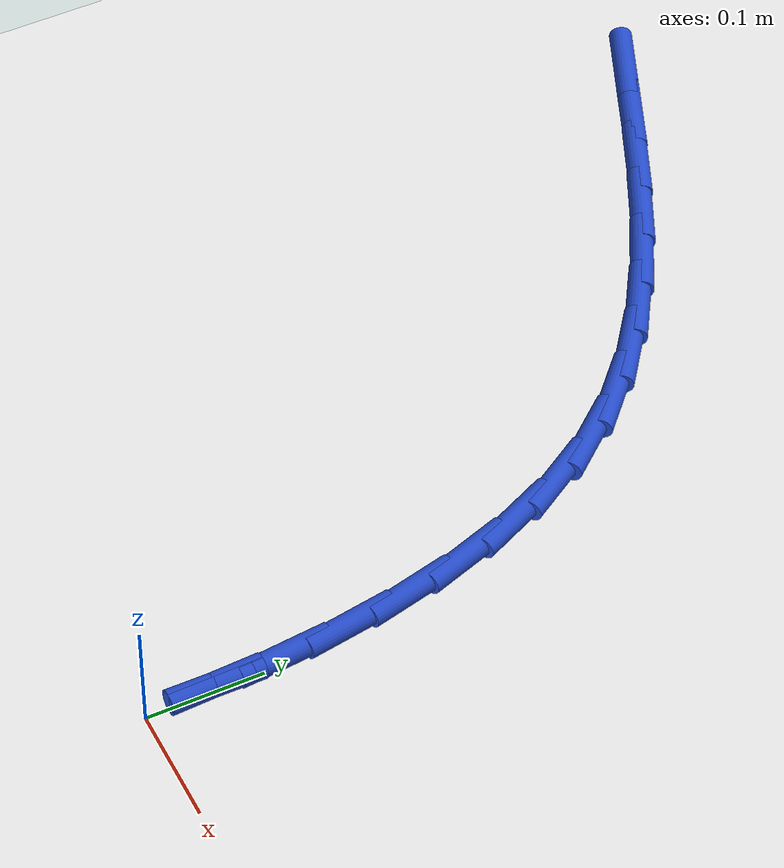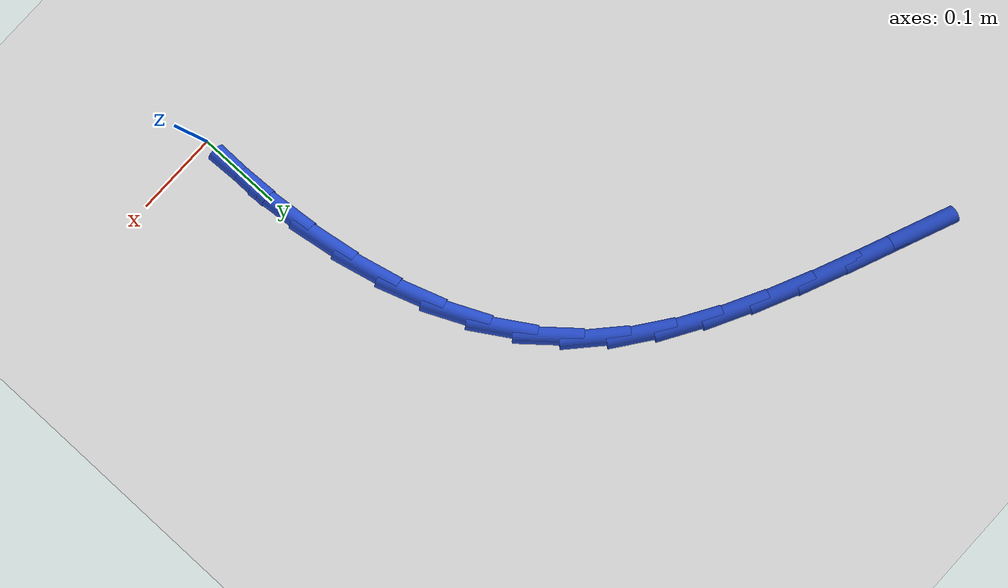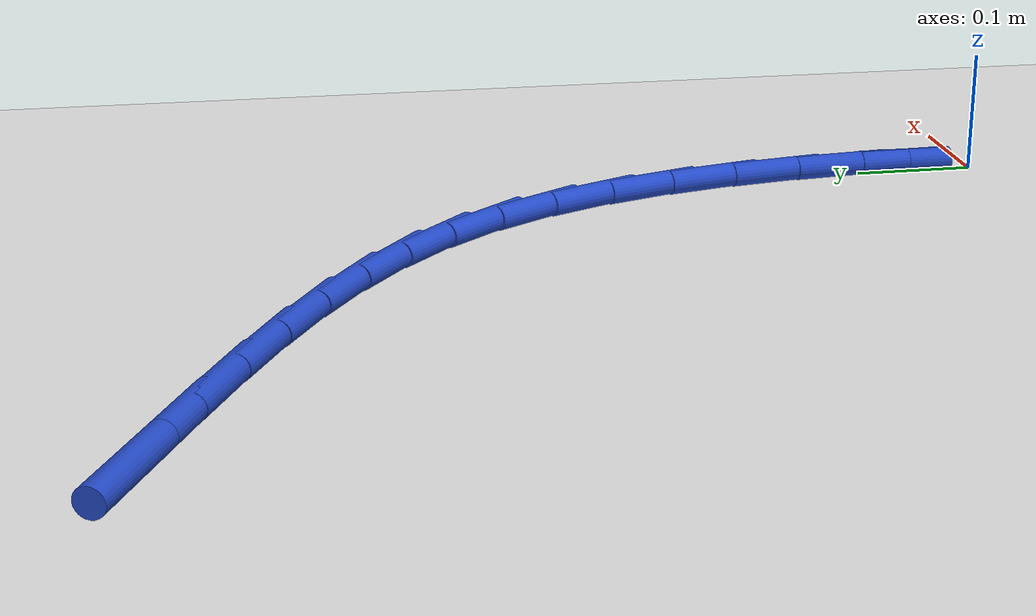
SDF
<sdf version="1.6">
 <world name="default">
  <model name="ground_plane">
   <static>1</static>
   <link name="link">
    <collision name="collision">
     <geometry><plane><normal>0 0 1</normal><size>100 100</size></plane></geometry>
     <surface><friction><ode><mu>100</mu><mu2>50</mu2></ode></friction></surface>
    </collision>
    <visual name="visual">
     <cast_shadows>0</cast_shadows>
     <geometry><plane><normal>0 0 1</normal><size>100 100</size></plane></geometry>
     <material>
      <script><uri>file://media/materials/scripts/gazebo.material</uri><name>Gazebo/WhiteGlow</name></script>
     </material>
    </visual>
   </link>
  </model>
  <model name="line">
   <link name="link_1">
    <pose>0.00027007987229068966 0.05878666701944535 0.01 0 1.57 -1.5292984742662499</pose>
    <collision name="collision">
     <geometry><cylinder><radius>0.01</radius><length>0.08</length></cylinder></geometry>
    </collision>
    <visual name="visual">
     <material>
      <script><name>Gazebo/Blue</name><uri>file://media/materials/scripts/gazebo.material</uri></script>
     </material>
     <geometry><cylinder><radius>0.01</radius><length>0.08</length></cylinder></geometry>
    </visual>
   </link>
   <link name="link_2">
    <pose>-0.0021745974491319316 0.11766378253622534 0.01 0 1.57 -1.4751828375301648</pose>
    <collision name="collision">
     <geometry><cylinder><radius>0.01</radius><length>0.08</length></cylinder></geometry>
    </collision>
    <visual name="visual">
     <material>
      <script><name>Gazebo/Blue</name><uri>file://media/materials/scripts/gazebo.material</uri></script>
     </material>
     <geometry><cylinder><radius>0.01</radius><length>0.08</length></cylinder></geometry>
    </visual>
   </link>
   <link name="link_3">
    <pose>-0.007760177201594749 0.17590397858146603 0.01 0 1.57 -1.4112414805504845</pose>
    <collision name="collision">
     <geometry><cylinder><radius>0.01</radius><length>0.08</length></cylinder></geometry>
    </collision>
    <visual name="visual">
     <material>
      <script><name>Gazebo/Blue</name><uri>file://media/materials/scripts/gazebo.material</uri></script>
     </material>
     <geometry><cylinder><radius>0.01</radius><length>0.08</length></cylinder></geometry>
    </visual>
   </link>
   <link name="link_4">
    <pose>-0.016912804622424615 0.2327798871862933 0.01 0 1.57 -1.3352927763721705</pose>
    <collision name="collision">
     <geometry><cylinder><radius>0.01</radius><length>0.08</length></cylinder></geometry>
    </collision>
    <visual name="visual">
     <material>
      <script><name>Gazebo/Blue</name><uri>file://media/materials/scripts/gazebo.material</uri></script>
     </material>
     <geometry><cylinder><radius>0.01</radius><length>0.08</length></cylinder></geometry>
    </visual>
   </link>
   <link name="link_5">
    <pose>-0.030058624948948405 0.2875641403818332 0.01 0 1.57 -1.2448359389630692</pose>
    <collision name="collision">
     <geometry><cylinder><radius>0.01</radius><length>0.08</length></cylinder></geometry>
    </collision>
    <visual name="visual">
     <material>
      <script><name>Gazebo/Blue</name><uri>file://media/materials/scripts/gazebo.material</uri></script>
     </material>
     <geometry><cylinder><radius>0.01</radius><length>0.08</length></cylinder></geometry>
    </visual>
   </link>
   <link name="link_6">
    <pose>-0.04762378341849294 0.33952937019921153 0.01 0 1.57 -1.1373081696943355</pose>
    <collision name="collision">
     <geometry><cylinder><radius>0.01</radius><length>0.08</length></cylinder></geometry>
    </collision>
    <visual name="visual">
     <material>
      <script><name>Gazebo/Blue</name><uri>file://media/materials/scripts/gazebo.material</uri></script>
     </material>
     <geometry><cylinder><radius>0.01</radius><length>0.08</length></cylinder></geometry>
    </visual>
   </link>
   <link name="link_7">
    <pose>-0.0700344252683851 0.38794820866955404 0.01 0 1.57 -1.0107063499671178</pose>
    <collision name="collision">
     <geometry><cylinder><radius>0.01</radius><length>0.08</length></cylinder></geometry>
    </collision>
    <visual name="visual">
     <material>
      <script><name>Gazebo/Blue</name><uri>file://media/materials/scripts/gazebo.material</uri></script>
     </material>
     <geometry><cylinder><radius>0.01</radius><length>0.08</length></cylinder></geometry>
    </visual>
   </link>
   <link name="link_8">
    <pose>-0.09771669573595176 0.43209328782398704 0.01 0 1.57 -0.8696762934072503</pose>
    <collision name="collision">
     <geometry><cylinder><radius>0.01</radius><length>0.08</length></cylinder></geometry>
    </collision>
    <visual name="visual">
     <material>
      <script><name>Gazebo/Blue</name><uri>file://media/materials/scripts/gazebo.material</uri></script>
     </material>
     <geometry><cylinder><radius>0.01</radius><length>0.08</length></cylinder></geometry>
    </visual>
   </link>
   <link name="link_9">
    <pose>-0.13093241512899828 0.47143885682973213 0.01 0 1.57 -0.740003260000477</pose>
    <collision name="collision">
     <geometry><cylinder><radius>0.01</radius><length>0.08</length></cylinder></geometry>
    </collision>
    <visual name="visual">
     <material>
      <script><name>Gazebo/Blue</name><uri>file://media/materials/scripts/gazebo.material</uri></script>
     </material>
     <geometry><cylinder><radius>0.01</radius><length>0.08</length></cylinder></geometry>
    </visual>
   </link>
   <link name="link_10">
    <pose>-0.16919554271547965 0.5063767468757516 0.01 0 1.57 -0.6317446489766027</pose>
    <collision name="collision">
     <geometry><cylinder><radius>0.01</radius><length>0.08</length></cylinder></geometry>
    </collision>
    <visual name="visual">
     <material>
      <script><name>Gazebo/Blue</name><uri>file://media/materials/scripts/gazebo.material</uri></script>
     </material>
     <geometry><cylinder><radius>0.01</radius><length>0.08</length></cylinder></geometry>
    </visual>
   </link>
   <link name="link_11">
    <pose>-0.21180739723101927 0.5375596867231008 0.01 0 1.57 -0.5455470708644228</pose>
    <collision name="collision">
     <geometry><cylinder><radius>0.01</radius><length>0.08</length></cylinder></geometry>
    </collision>
    <visual name="visual">
     <material>
      <script><name>Gazebo/Blue</name><uri>file://media/materials/scripts/gazebo.material</uri></script>
     </material>
     <geometry><cylinder><radius>0.01</radius><length>0.08</length></cylinder></geometry>
    </visual>
   </link>
   <link name="link_12">
    <pose>-0.25806928252685596 0.5656404233951103 0.01 0 1.57 -0.4801653615835078</pose>
    <collision name="collision">
     <geometry><cylinder><radius>0.01</radius><length>0.08</length></cylinder></geometry>
    </collision>
    <visual name="visual">
     <material>
      <script><name>Gazebo/Blue</name><uri>file://media/materials/scripts/gazebo.material</uri></script>
     </material>
     <geometry><cylinder><radius>0.01</radius><length>0.08</length></cylinder></geometry>
    </visual>
   </link>
   <link name="link_13">
    <pose>-0.3072825024542286 0.5912717039151104 0.01 0 1.57 -0.43370604463463086</pose>
    <collision name="collision">
     <geometry><cylinder><radius>0.01</radius><length>0.08</length></cylinder></geometry>
    </collision>
    <visual name="visual">
     <material>
      <script><name>Gazebo/Blue</name><uri>file://media/materials/scripts/gazebo.material</uri></script>
     </material>
     <geometry><cylinder><radius>0.01</radius><length>0.08</length></cylinder></geometry>
    </visual>
   </link>
   <link name="link_14">
    <pose>-0.35874836086437584 0.6151062753064315 0.01 0 1.57 -0.4043791909685627</pose>
    <collision name="collision">
     <geometry><cylinder><radius>0.01</radius><length>0.08</length></cylinder></geometry>
    </collision>
    <visual name="visual">
     <material>
      <script><name>Gazebo/Blue</name><uri>file://media/materials/scripts/gazebo.material</uri></script>
     </material>
     <geometry><cylinder><radius>0.01</radius><length>0.08</length></cylinder></geometry>
    </visual>
   </link>
   <link name="link_15">
    <pose>-0.4117681616085368 0.6377968845924039 0.01 0 1.57 -0.3908538279553057</pose>
    <collision name="collision">
     <geometry><cylinder><radius>0.01</radius><length>0.08</length></cylinder></geometry>
    </collision>
    <visual name="visual">
     <material>
      <script><name>Gazebo/Blue</name><uri>file://media/materials/scripts/gazebo.material</uri></script>
     </material>
     <geometry><cylinder><radius>0.01</radius><length>0.08</length></cylinder></geometry>
    </visual>
   </link>
   <link name="link_16">
    <pose>-0.46564320853795 0.6599962787963579 0.01 0 1.57 -0.39238792775715886</pose>
    <collision name="collision">
     <geometry><cylinder><radius>0.01</radius><length>0.08</length></cylinder></geometry>
    </collision>
    <visual name="visual">
     <material>
      <script><name>Gazebo/Blue</name><uri>file://media/materials/scripts/gazebo.material</uri></script>
     </material>
     <geometry><cylinder><radius>0.01</radius><length>0.08</length></cylinder></geometry>
    </visual>
   </link>
   <link name="link_141">
    <pose>0.00036620399926231943 0.05888834780123711 0.01 0 1.57 1.5645777913370118</pose>
    <collision name="collision">
     <geometry><cylinder><radius>0.01</radius><length>0.08</length></cylinder></geometry>
    </collision>
    <visual name="visual">
     <material>
      <script><name>Gazebo/Blue</name><uri>file://media/materials/scripts/gazebo.material</uri></script>
     </material>
     <geometry><cylinder><radius>0.01</radius><length>0.08</length></cylinder></geometry>
    </visual>
   </link>
  </model>
 </world>
</sdf>
